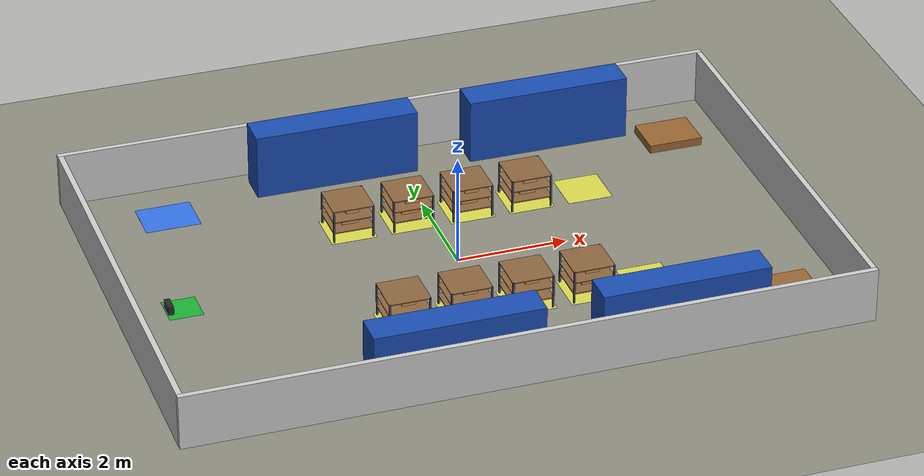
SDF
<?xml version="1.0"?>
<!-- SINH TU DONG boi agv_gazebo/scripts/make_warehouse.py tu agv_mission/config/shelves.yaml.
     Khong sua tay: sua yaml roi chay lai script. -->
<sdf version="1.9">
  <world name="warehouse">
    <physics name="3ms" type="ignored">
      <max_step_size>0.003</max_step_size>
      <real_time_factor>1.0</real_time_factor>
    </physics>
    <plugin filename="gz-sim-physics-system" name="gz::sim::systems::Physics"/>
    <plugin filename="gz-sim-user-commands-system" name="gz::sim::systems::UserCommands"/>
    <plugin filename="gz-sim-scene-broadcaster-system" name="gz::sim::systems::SceneBroadcaster"/>
    <plugin filename="gz-sim-sensors-system" name="gz::sim::systems::Sensors">
      <render_engine>ogre2</render_engine>
    </plugin>
    <plugin filename="gz-sim-imu-system" name="gz::sim::systems::Imu"/>
    <!-- Cam bien tiep xuc mat nang cua xe ("co ke") -->
    <plugin filename="gz-sim-contact-system" name="gz::sim::systems::Contact"/>
    <scene><ambient>0.6 0.6 0.6 1</ambient><background>0.7 0.7 0.7 1</background><grid>false</grid></scene>
    <light type="directional" name="sun"><cast_shadows>true</cast_shadows><pose>0 0 10 0 0 0</pose><diffuse>0.9 0.9 0.9 1</diffuse><specular>0.2 0.2 0.2 1</specular><direction>-0.3 0.2 -0.9</direction></light>
    <model name="floor"><static>true</static><link name="link"><collision name="c"><geometry><plane><normal>0 0 1</normal><size>30 30</size></plane></geometry></collision><visual name="v"><geometry><plane><normal>0 0 1</normal><size>30 30</size></plane></geometry><material><ambient>0.55 0.55 0.5 1</ambient><diffuse>0.55 0.55 0.5 1</diffuse></material></visual></link></model>
    <!-- Tuong cao 1 m -->
    <model name="wall_north"><static>true</static><pose>0 4.05 0.5 0 0 0.0</pose>
      <link name="link"><collision name="wall_north_c"><pose>0 0 0 0 0 0</pose><geometry><box><size>12.2 0.1 1.0</size></box></geometry></collision><visual name="wall_north_v"><pose>0 0 0 0 0 0</pose><geometry><box><size>12.2 0.1 1.0</size></box></geometry><material><ambient>0.8 0.8 0.8 1</ambient><diffuse>0.8 0.8 0.8 1</diffuse></material></visual></link>
    </model>
    <model name="wall_south"><static>true</static><pose>0 -4.05 0.5 0 0 0.0</pose>
      <link name="link"><collision name="wall_south_c"><pose>0 0 0 0 0 0</pose><geometry><box><size>12.2 0.1 1.0</size></box></geometry></collision><visual name="wall_south_v"><pose>0 0 0 0 0 0</pose><geometry><box><size>12.2 0.1 1.0</size></box></geometry><material><ambient>0.8 0.8 0.8 1</ambient><diffuse>0.8 0.8 0.8 1</diffuse></material></visual></link>
    </model>
    <model name="wall_east"><static>true</static><pose>6.05 0 0.5 0 0 0.0</pose>
      <link name="link"><collision name="wall_east_c"><pose>0 0 0 0 0 0</pose><geometry><box><size>0.1 8.0 1.0</size></box></geometry></collision><visual name="wall_east_v"><pose>0 0 0 0 0 0</pose><geometry><box><size>0.1 8.0 1.0</size></box></geometry><material><ambient>0.8 0.8 0.8 1</ambient><diffuse>0.8 0.8 0.8 1</diffuse></material></visual></link>
    </model>
    <model name="wall_west"><static>true</static><pose>-6.05 0 0.5 0 0 0.0</pose>
      <link name="link"><collision name="wall_west_c"><pose>0 0 0 0 0 0</pose><geometry><box><size>0.1 8.0 1.0</size></box></geometry></collision><visual name="wall_west_v"><pose>0 0 0 0 0 0</pose><geometry><box><size>0.1 8.0 1.0</size></box></geometry><material><ambient>0.8 0.8 0.8 1</ambient><diffuse>0.8 0.8 0.8 1</diffuse></material></visual></link>
    </model>
    <!-- Ke co dinh sat tuong (toi san, lidar thay) -->
    <model name="rack_1"><static>true</static><pose>-1.2 3.45 0.6 0 0 0.0</pose>
      <link name="link"><collision name="rack_1_c"><pose>0 0 0 0 0 0</pose><geometry><box><size>3.0 0.6 1.2</size></box></geometry></collision><visual name="rack_1_v"><pose>0 0 0 0 0 0</pose><geometry><box><size>3.0 0.6 1.2</size></box></geometry><material><ambient>0.1 0.3 0.7 1</ambient><diffuse>0.1 0.3 0.7 1</diffuse></material></visual></link>
    </model>
    <model name="rack_2"><static>true</static><pose>2.8 3.45 0.6 0 0 0.0</pose>
      <link name="link"><collision name="rack_2_c"><pose>0 0 0 0 0 0</pose><geometry><box><size>3.0 0.6 1.2</size></box></geometry></collision><visual name="rack_2_v"><pose>0 0 0 0 0 0</pose><geometry><box><size>3.0 0.6 1.2</size></box></geometry><material><ambient>0.1 0.3 0.7 1</ambient><diffuse>0.1 0.3 0.7 1</diffuse></material></visual></link>
    </model>
    <model name="rack_3"><static>true</static><pose>-1.2 -3.45 0.6 0 0 0.0</pose>
      <link name="link"><collision name="rack_3_c"><pose>0 0 0 0 0 0</pose><geometry><box><size>3.0 0.6 1.2</size></box></geometry></collision><visual name="rack_3_v"><pose>0 0 0 0 0 0</pose><geometry><box><size>3.0 0.6 1.2</size></box></geometry><material><ambient>0.1 0.3 0.7 1</ambient><diffuse>0.1 0.3 0.7 1</diffuse></material></visual></link>
    </model>
    <model name="rack_4"><static>true</static><pose>2.8 -3.45 0.6 0 0 0.0</pose>
      <link name="link"><collision name="rack_4_c"><pose>0 0 0 0 0 0</pose><geometry><box><size>3.0 0.6 1.2</size></box></geometry></collision><visual name="rack_4_v"><pose>0 0 0 0 0 0</pose><geometry><box><size>3.0 0.6 1.2</size></box></geometry><material><ambient>0.1 0.3 0.7 1</ambient><diffuse>0.1 0.3 0.7 1</diffuse></material></visual></link>
    </model>
    <!-- Pallet 0.15 m: lidar o 0.12 m thay duoc, khong can vung cam -->
    <model name="pallet_1"><static>true</static><pose>5.0 2.8 0.075 0 0 0.0</pose>
      <link name="link"><collision name="pallet_1_c"><pose>0 0 0 0 0 0</pose><geometry><box><size>1.0 0.8 0.15</size></box></geometry></collision><visual name="pallet_1_v"><pose>0 0 0 0 0 0</pose><geometry><box><size>1.0 0.8 0.15</size></box></geometry><material><ambient>0.6 0.4 0.2 1</ambient><diffuse>0.6 0.4 0.2 1</diffuse></material></visual></link>
    </model>
    <model name="pallet_2"><static>true</static><pose>5.0 -2.8 0.075 0 0 0.0</pose>
      <link name="link"><collision name="pallet_2_c"><pose>0 0 0 0 0 0</pose><geometry><box><size>1.0 0.8 0.15</size></box></geometry></collision><visual name="pallet_2_v"><pose>0 0 0 0 0 0</pose><geometry><box><size>1.0 0.8 0.15</size></box></geometry><material><ambient>0.6 0.4 0.2 1</ambient><diffuse>0.6 0.4 0.2 1</diffuse></material></visual></link>
    </model>
    <!-- Vach son san (khong collision): tram va o ke -->
    <model name="mark_tram_sac"><static>true</static><pose>-4.95 0.0 0.001 0 0 0.0</pose>
      <link name="link"><visual name="mark_tram_sac_v"><pose>0 0 0 0 0 0</pose><geometry><box><size>0.6 0.6 0.002</size></box></geometry><material><ambient>0.1 0.7 0.2 1</ambient><diffuse>0.1 0.7 0.2 1</diffuse></material></visual></link>
    </model>
    <model name="mark_tram_lay_hang"><static>true</static><pose>-4.4 -3.0 0.001 0 0 0.0</pose>
      <link name="link"><visual name="mark_tram_lay_hang_v"><pose>0 0 0 0 0 0</pose><geometry><box><size>1.0 0.8 0.002</size></box></geometry><material><ambient>0.95 0.55 0.0 1</ambient><diffuse>0.95 0.55 0.0 1</diffuse></material></visual></link>
    </model>
    <model name="mark_khu_nhap_hang"><static>true</static><pose>-4.4 3.0 0.001 0 0 0.0</pose>
      <link name="link"><visual name="mark_khu_nhap_hang_v"><pose>0 0 0 0 0 0</pose><geometry><box><size>1.0 0.8 0.002</size></box></geometry><material><ambient>0.2 0.45 0.9 1</ambient><diffuse>0.2 0.45 0.9 1</diffuse></material></visual></link>
    </model>
    <model name="charger_tram_sac"><static>true</static><pose>-5.179999999999191 6.103256524711279e-07 0.075 0 0 3.14159</pose>
      <link name="link"><collision name="charger_tram_sac_c"><pose>0 0 0 0 0 0</pose><geometry><box><size>0.1 0.3 0.15</size></box></geometry></collision><visual name="charger_tram_sac_v"><pose>0 0 0 0 0 0</pose><geometry><box><size>0.1 0.3 0.15</size></box></geometry><material><ambient>0.15 0.15 0.15 1</ambient><diffuse>0.15 0.15 0.15 1</diffuse></material></visual></link>
    </model>
    <model name="slot_N1"><static>true</static><pose>-1.5 1.6 0.0005 0 0 0.0</pose>
      <link name="link"><visual name="slot_N1_v"><pose>0 0 0 0 0 0</pose><geometry><box><size>0.83 0.83 0.001</size></box></geometry><material><ambient>0.85 0.85 0.3 1</ambient><diffuse>0.85 0.85 0.3 1</diffuse></material></visual></link>
    </model>
    <model name="slot_N2"><static>true</static><pose>-0.40000000000000036 1.6 0.0005 0 0 0.0</pose>
      <link name="link"><visual name="slot_N2_v"><pose>0 0 0 0 0 0</pose><geometry><box><size>0.83 0.83 0.001</size></box></geometry><material><ambient>0.85 0.85 0.3 1</ambient><diffuse>0.85 0.85 0.3 1</diffuse></material></visual></link>
    </model>
    <model name="slot_N3"><static>true</static><pose>0.7000000000000002 1.6 0.0005 0 0 0.0</pose>
      <link name="link"><visual name="slot_N3_v"><pose>0 0 0 0 0 0</pose><geometry><box><size>0.83 0.83 0.001</size></box></geometry><material><ambient>0.85 0.85 0.3 1</ambient><diffuse>0.85 0.85 0.3 1</diffuse></material></visual></link>
    </model>
    <model name="slot_N4"><static>true</static><pose>1.7999999999999998 1.6 0.0005 0 0 0.0</pose>
      <link name="link"><visual name="slot_N4_v"><pose>0 0 0 0 0 0</pose><geometry><box><size>0.83 0.83 0.001</size></box></geometry><material><ambient>0.85 0.85 0.3 1</ambient><diffuse>0.85 0.85 0.3 1</diffuse></material></visual></link>
    </model>
    <model name="slot_N5"><static>true</static><pose>2.9000000000000004 1.6 0.0005 0 0 0.0</pose>
      <link name="link"><visual name="slot_N5_v"><pose>0 0 0 0 0 0</pose><geometry><box><size>0.83 0.83 0.001</size></box></geometry><material><ambient>0.85 0.85 0.3 1</ambient><diffuse>0.85 0.85 0.3 1</diffuse></material></visual></link>
    </model>
    <model name="slot_S1"><static>true</static><pose>-1.5 -1.6 0.0005 0 0 0.0</pose>
      <link name="link"><visual name="slot_S1_v"><pose>0 0 0 0 0 0</pose><geometry><box><size>0.83 0.83 0.001</size></box></geometry><material><ambient>0.85 0.85 0.3 1</ambient><diffuse>0.85 0.85 0.3 1</diffuse></material></visual></link>
    </model>
    <model name="slot_S2"><static>true</static><pose>-0.40000000000000036 -1.6 0.0005 0 0 0.0</pose>
      <link name="link"><visual name="slot_S2_v"><pose>0 0 0 0 0 0</pose><geometry><box><size>0.83 0.83 0.001</size></box></geometry><material><ambient>0.85 0.85 0.3 1</ambient><diffuse>0.85 0.85 0.3 1</diffuse></material></visual></link>
    </model>
    <model name="slot_S3"><static>true</static><pose>0.7000000000000002 -1.6 0.0005 0 0 0.0</pose>
      <link name="link"><visual name="slot_S3_v"><pose>0 0 0 0 0 0</pose><geometry><box><size>0.83 0.83 0.001</size></box></geometry><material><ambient>0.85 0.85 0.3 1</ambient><diffuse>0.85 0.85 0.3 1</diffuse></material></visual></link>
    </model>
    <model name="slot_S4"><static>true</static><pose>1.7999999999999998 -1.6 0.0005 0 0 0.0</pose>
      <link name="link"><visual name="slot_S4_v"><pose>0 0 0 0 0 0</pose><geometry><box><size>0.83 0.83 0.001</size></box></geometry><material><ambient>0.85 0.85 0.3 1</ambient><diffuse>0.85 0.85 0.3 1</diffuse></material></visual></link>
    </model>
    <model name="slot_S5"><static>true</static><pose>2.9000000000000004 -1.6 0.0005 0 0 0.0</pose>
      <link name="link"><visual name="slot_S5_v"><pose>0 0 0 0 0 0</pose><geometry><box><size>0.83 0.83 0.001</size></box></geometry><material><ambient>0.85 0.85 0.3 1</ambient><diffuse>0.85 0.85 0.3 1</diffuse></material></visual></link>
    </model>
    <!-- Ke mini 0.75 m, gam 0.18 m, 3.0 kg (ke + hang) -->
    <model name="ke_01"><pose>-1.5 1.6 0 0 0 0</pose>
      <link name="link">
        <inertial><pose>0 0 0.32999999999999996 0 0 0</pose><mass>3.0</mass><inertia><ixx>0.2367</ixx><iyy>0.2367</iyy><izz>0.2812</izz><ixy>0</ixy><ixz>0</ixz><iyz>0</iyz></inertia></inertial>
        <collision name="leg0_c"><pose>0.36 0.36 0.09 0 0 0</pose><geometry><box><size>0.03 0.03 0.18</size></box></geometry></collision><visual name="leg0_v"><pose>0.36 0.36 0.09 0 0 0</pose><geometry><box><size>0.03 0.03 0.18</size></box></geometry><material><ambient>0.3 0.3 0.35 1</ambient><diffuse>0.3 0.3 0.35 1</diffuse></material></visual><collision name="post0_c"><pose>0.36 0.36 0.41 0 0 0</pose><geometry><box><size>0.03 0.03 0.42</size></box></geometry></collision><visual name="post0_v"><pose>0.36 0.36 0.41 0 0 0</pose><geometry><box><size>0.03 0.03 0.42</size></box></geometry><material><ambient>0.3 0.3 0.35 1</ambient><diffuse>0.3 0.3 0.35 1</diffuse></material></visual><collision name="leg1_c"><pose>0.36 -0.36 0.09 0 0 0</pose><geometry><box><size>0.03 0.03 0.18</size></box></geometry></collision><visual name="leg1_v"><pose>0.36 -0.36 0.09 0 0 0</pose><geometry><box><size>0.03 0.03 0.18</size></box></geometry><material><ambient>0.3 0.3 0.35 1</ambient><diffuse>0.3 0.3 0.35 1</diffuse></material></visual><collision name="post1_c"><pose>0.36 -0.36 0.41 0 0 0</pose><geometry><box><size>0.03 0.03 0.42</size></box></geometry></collision><visual name="post1_v"><pose>0.36 -0.36 0.41 0 0 0</pose><geometry><box><size>0.03 0.03 0.42</size></box></geometry><material><ambient>0.3 0.3 0.35 1</ambient><diffuse>0.3 0.3 0.35 1</diffuse></material></visual><collision name="leg2_c"><pose>-0.36 0.36 0.09 0 0 0</pose><geometry><box><size>0.03 0.03 0.18</size></box></geometry></collision><visual name="leg2_v"><pose>-0.36 0.36 0.09 0 0 0</pose><geometry><box><size>0.03 0.03 0.18</size></box></geometry><material><ambient>0.3 0.3 0.35 1</ambient><diffuse>0.3 0.3 0.35 1</diffuse></material></visual><collision name="post2_c"><pose>-0.36 0.36 0.41 0 0 0</pose><geometry><box><size>0.03 0.03 0.42</size></box></geometry></collision><visual name="post2_v"><pose>-0.36 0.36 0.41 0 0 0</pose><geometry><box><size>0.03 0.03 0.42</size></box></geometry><material><ambient>0.3 0.3 0.35 1</ambient><diffuse>0.3 0.3 0.35 1</diffuse></material></visual><collision name="leg3_c"><pose>-0.36 -0.36 0.09 0 0 0</pose><geometry><box><size>0.03 0.03 0.18</size></box></geometry></collision><visual name="leg3_v"><pose>-0.36 -0.36 0.09 0 0 0</pose><geometry><box><size>0.03 0.03 0.18</size></box></geometry><material><ambient>0.3 0.3 0.35 1</ambient><diffuse>0.3 0.3 0.35 1</diffuse></material></visual><collision name="post3_c"><pose>-0.36 -0.36 0.41 0 0 0</pose><geometry><box><size>0.03 0.03 0.42</size></box></geometry></collision><visual name="post3_v"><pose>-0.36 -0.36 0.41 0 0 0</pose><geometry><box><size>0.03 0.03 0.42</size></box></geometry><material><ambient>0.3 0.3 0.35 1</ambient><diffuse>0.3 0.3 0.35 1</diffuse></material></visual><collision name="deck_bottom_c"><pose>0 0 0.19 0 0 0</pose><geometry><box><size>0.75 0.75 0.02</size></box></geometry></collision><visual name="deck_bottom_v"><pose>0 0 0.19 0 0 0</pose><geometry><box><size>0.75 0.75 0.02</size></box></geometry><material><ambient>0.55 0.4 0.25 1</ambient><diffuse>0.55 0.4 0.25 1</diffuse></material></visual><collision name="deck_mid_c"><pose>0 0 0.4 0 0 0</pose><geometry><box><size>0.75 0.75 0.015</size></box></geometry></collision><visual name="deck_mid_v"><pose>0 0 0.4 0 0 0</pose><geometry><box><size>0.75 0.75 0.015</size></box></geometry><material><ambient>0.55 0.4 0.25 1</ambient><diffuse>0.55 0.4 0.25 1</diffuse></material></visual><collision name="deck_top_c"><pose>0 0 0.6125 0 0 0</pose><geometry><box><size>0.75 0.75 0.015</size></box></geometry></collision><visual name="deck_top_v"><pose>0 0 0.6125 0 0 0</pose><geometry><box><size>0.75 0.75 0.015</size></box></geometry><material><ambient>0.55 0.4 0.25 1</ambient><diffuse>0.55 0.4 0.25 1</diffuse></material></visual><collision name="goods1_c"><pose>0 0 0.27499999999999997 0 0 0</pose><geometry><box><size>0.3 0.3 0.15</size></box></geometry></collision><visual name="goods1_v"><pose>0 0 0.27499999999999997 0 0 0</pose><geometry><box><size>0.3 0.3 0.15</size></box></geometry><material><ambient>0.8 0.6 0.3 1</ambient><diffuse>0.8 0.6 0.3 1</diffuse></material></visual><collision name="goods2_c"><pose>0.05 -0.05 0.4675 0 0 0</pose><geometry><box><size>0.25 0.2 0.12</size></box></geometry></collision><visual name="goods2_v"><pose>0.05 -0.05 0.4675 0 0 0</pose><geometry><box><size>0.25 0.2 0.12</size></box></geometry><material><ambient>0.8 0.6 0.3 1</ambient><diffuse>0.8 0.6 0.3 1</diffuse></material></visual>
      </link>
    </model>
    <model name="ke_02"><pose>-0.40000000000000036 1.6 0 0 0 0</pose>
      <link name="link">
        <inertial><pose>0 0 0.32999999999999996 0 0 0</pose><mass>3.0</mass><inertia><ixx>0.2367</ixx><iyy>0.2367</iyy><izz>0.2812</izz><ixy>0</ixy><ixz>0</ixz><iyz>0</iyz></inertia></inertial>
        <collision name="leg0_c"><pose>0.36 0.36 0.09 0 0 0</pose><geometry><box><size>0.03 0.03 0.18</size></box></geometry></collision><visual name="leg0_v"><pose>0.36 0.36 0.09 0 0 0</pose><geometry><box><size>0.03 0.03 0.18</size></box></geometry><material><ambient>0.3 0.3 0.35 1</ambient><diffuse>0.3 0.3 0.35 1</diffuse></material></visual><collision name="post0_c"><pose>0.36 0.36 0.41 0 0 0</pose><geometry><box><size>0.03 0.03 0.42</size></box></geometry></collision><visual name="post0_v"><pose>0.36 0.36 0.41 0 0 0</pose><geometry><box><size>0.03 0.03 0.42</size></box></geometry><material><ambient>0.3 0.3 0.35 1</ambient><diffuse>0.3 0.3 0.35 1</diffuse></material></visual><collision name="leg1_c"><pose>0.36 -0.36 0.09 0 0 0</pose><geometry><box><size>0.03 0.03 0.18</size></box></geometry></collision><visual name="leg1_v"><pose>0.36 -0.36 0.09 0 0 0</pose><geometry><box><size>0.03 0.03 0.18</size></box></geometry><material><ambient>0.3 0.3 0.35 1</ambient><diffuse>0.3 0.3 0.35 1</diffuse></material></visual><collision name="post1_c"><pose>0.36 -0.36 0.41 0 0 0</pose><geometry><box><size>0.03 0.03 0.42</size></box></geometry></collision><visual name="post1_v"><pose>0.36 -0.36 0.41 0 0 0</pose><geometry><box><size>0.03 0.03 0.42</size></box></geometry><material><ambient>0.3 0.3 0.35 1</ambient><diffuse>0.3 0.3 0.35 1</diffuse></material></visual><collision name="leg2_c"><pose>-0.36 0.36 0.09 0 0 0</pose><geometry><box><size>0.03 0.03 0.18</size></box></geometry></collision><visual name="leg2_v"><pose>-0.36 0.36 0.09 0 0 0</pose><geometry><box><size>0.03 0.03 0.18</size></box></geometry><material><ambient>0.3 0.3 0.35 1</ambient><diffuse>0.3 0.3 0.35 1</diffuse></material></visual><collision name="post2_c"><pose>-0.36 0.36 0.41 0 0 0</pose><geometry><box><size>0.03 0.03 0.42</size></box></geometry></collision><visual name="post2_v"><pose>-0.36 0.36 0.41 0 0 0</pose><geometry><box><size>0.03 0.03 0.42</size></box></geometry><material><ambient>0.3 0.3 0.35 1</ambient><diffuse>0.3 0.3 0.35 1</diffuse></material></visual><collision name="leg3_c"><pose>-0.36 -0.36 0.09 0 0 0</pose><geometry><box><size>0.03 0.03 0.18</size></box></geometry></collision><visual name="leg3_v"><pose>-0.36 -0.36 0.09 0 0 0</pose><geometry><box><size>0.03 0.03 0.18</size></box></geometry><material><ambient>0.3 0.3 0.35 1</ambient><diffuse>0.3 0.3 0.35 1</diffuse></material></visual><collision name="post3_c"><pose>-0.36 -0.36 0.41 0 0 0</pose><geometry><box><size>0.03 0.03 0.42</size></box></geometry></collision><visual name="post3_v"><pose>-0.36 -0.36 0.41 0 0 0</pose><geometry><box><size>0.03 0.03 0.42</size></box></geometry><material><ambient>0.3 0.3 0.35 1</ambient><diffuse>0.3 0.3 0.35 1</diffuse></material></visual><collision name="deck_bottom_c"><pose>0 0 0.19 0 0 0</pose><geometry><box><size>0.75 0.75 0.02</size></box></geometry></collision><visual name="deck_bottom_v"><pose>0 0 0.19 0 0 0</pose><geometry><box><size>0.75 0.75 0.02</size></box></geometry><material><ambient>0.55 0.4 0.25 1</ambient><diffuse>0.55 0.4 0.25 1</diffuse></material></visual><collision name="deck_mid_c"><pose>0 0 0.4 0 0 0</pose><geometry><box><size>0.75 0.75 0.015</size></box></geometry></collision><visual name="deck_mid_v"><pose>0 0 0.4 0 0 0</pose><geometry><box><size>0.75 0.75 0.015</size></box></geometry><material><ambient>0.55 0.4 0.25 1</ambient><diffuse>0.55 0.4 0.25 1</diffuse></material></visual><collision name="deck_top_c"><pose>0 0 0.6125 0 0 0</pose><geometry><box><size>0.75 0.75 0.015</size></box></geometry></collision><visual name="deck_top_v"><pose>0 0 0.6125 0 0 0</pose><geometry><box><size>0.75 0.75 0.015</size></box></geometry><material><ambient>0.55 0.4 0.25 1</ambient><diffuse>0.55 0.4 0.25 1</diffuse></material></visual><collision name="goods1_c"><pose>0 0 0.27499999999999997 0 0 0</pose><geometry><box><size>0.3 0.3 0.15</size></box></geometry></collision><visual name="goods1_v"><pose>0 0 0.27499999999999997 0 0 0</pose><geometry><box><size>0.3 0.3 0.15</size></box></geometry><material><ambient>0.8 0.6 0.3 1</ambient><diffuse>0.8 0.6 0.3 1</diffuse></material></visual><collision name="goods2_c"><pose>0.05 -0.05 0.4675 0 0 0</pose><geometry><box><size>0.25 0.2 0.12</size></box></geometry></collision><visual name="goods2_v"><pose>0.05 -0.05 0.4675 0 0 0</pose><geometry><box><size>0.25 0.2 0.12</size></box></geometry><material><ambient>0.8 0.6 0.3 1</ambient><diffuse>0.8 0.6 0.3 1</diffuse></material></visual>
      </link>
    </model>
    <model name="ke_03"><pose>0.7000000000000002 1.6 0 0 0 0</pose>
      <link name="link">
        <inertial><pose>0 0 0.32999999999999996 0 0 0</pose><mass>3.0</mass><inertia><ixx>0.2367</ixx><iyy>0.2367</iyy><izz>0.2812</izz><ixy>0</ixy><ixz>0</ixz><iyz>0</iyz></inertia></inertial>
        <collision name="leg0_c"><pose>0.36 0.36 0.09 0 0 0</pose><geometry><box><size>0.03 0.03 0.18</size></box></geometry></collision><visual name="leg0_v"><pose>0.36 0.36 0.09 0 0 0</pose><geometry><box><size>0.03 0.03 0.18</size></box></geometry><material><ambient>0.3 0.3 0.35 1</ambient><diffuse>0.3 0.3 0.35 1</diffuse></material></visual><collision name="post0_c"><pose>0.36 0.36 0.41 0 0 0</pose><geometry><box><size>0.03 0.03 0.42</size></box></geometry></collision><visual name="post0_v"><pose>0.36 0.36 0.41 0 0 0</pose><geometry><box><size>0.03 0.03 0.42</size></box></geometry><material><ambient>0.3 0.3 0.35 1</ambient><diffuse>0.3 0.3 0.35 1</diffuse></material></visual><collision name="leg1_c"><pose>0.36 -0.36 0.09 0 0 0</pose><geometry><box><size>0.03 0.03 0.18</size></box></geometry></collision><visual name="leg1_v"><pose>0.36 -0.36 0.09 0 0 0</pose><geometry><box><size>0.03 0.03 0.18</size></box></geometry><material><ambient>0.3 0.3 0.35 1</ambient><diffuse>0.3 0.3 0.35 1</diffuse></material></visual><collision name="post1_c"><pose>0.36 -0.36 0.41 0 0 0</pose><geometry><box><size>0.03 0.03 0.42</size></box></geometry></collision><visual name="post1_v"><pose>0.36 -0.36 0.41 0 0 0</pose><geometry><box><size>0.03 0.03 0.42</size></box></geometry><material><ambient>0.3 0.3 0.35 1</ambient><diffuse>0.3 0.3 0.35 1</diffuse></material></visual><collision name="leg2_c"><pose>-0.36 0.36 0.09 0 0 0</pose><geometry><box><size>0.03 0.03 0.18</size></box></geometry></collision><visual name="leg2_v"><pose>-0.36 0.36 0.09 0 0 0</pose><geometry><box><size>0.03 0.03 0.18</size></box></geometry><material><ambient>0.3 0.3 0.35 1</ambient><diffuse>0.3 0.3 0.35 1</diffuse></material></visual><collision name="post2_c"><pose>-0.36 0.36 0.41 0 0 0</pose><geometry><box><size>0.03 0.03 0.42</size></box></geometry></collision><visual name="post2_v"><pose>-0.36 0.36 0.41 0 0 0</pose><geometry><box><size>0.03 0.03 0.42</size></box></geometry><material><ambient>0.3 0.3 0.35 1</ambient><diffuse>0.3 0.3 0.35 1</diffuse></material></visual><collision name="leg3_c"><pose>-0.36 -0.36 0.09 0 0 0</pose><geometry><box><size>0.03 0.03 0.18</size></box></geometry></collision><visual name="leg3_v"><pose>-0.36 -0.36 0.09 0 0 0</pose><geometry><box><size>0.03 0.03 0.18</size></box></geometry><material><ambient>0.3 0.3 0.35 1</ambient><diffuse>0.3 0.3 0.35 1</diffuse></material></visual><collision name="post3_c"><pose>-0.36 -0.36 0.41 0 0 0</pose><geometry><box><size>0.03 0.03 0.42</size></box></geometry></collision><visual name="post3_v"><pose>-0.36 -0.36 0.41 0 0 0</pose><geometry><box><size>0.03 0.03 0.42</size></box></geometry><material><ambient>0.3 0.3 0.35 1</ambient><diffuse>0.3 0.3 0.35 1</diffuse></material></visual><collision name="deck_bottom_c"><pose>0 0 0.19 0 0 0</pose><geometry><box><size>0.75 0.75 0.02</size></box></geometry></collision><visual name="deck_bottom_v"><pose>0 0 0.19 0 0 0</pose><geometry><box><size>0.75 0.75 0.02</size></box></geometry><material><ambient>0.55 0.4 0.25 1</ambient><diffuse>0.55 0.4 0.25 1</diffuse></material></visual><collision name="deck_mid_c"><pose>0 0 0.4 0 0 0</pose><geometry><box><size>0.75 0.75 0.015</size></box></geometry></collision><visual name="deck_mid_v"><pose>0 0 0.4 0 0 0</pose><geometry><box><size>0.75 0.75 0.015</size></box></geometry><material><ambient>0.55 0.4 0.25 1</ambient><diffuse>0.55 0.4 0.25 1</diffuse></material></visual><collision name="deck_top_c"><pose>0 0 0.6125 0 0 0</pose><geometry><box><size>0.75 0.75 0.015</size></box></geometry></collision><visual name="deck_top_v"><pose>0 0 0.6125 0 0 0</pose><geometry><box><size>0.75 0.75 0.015</size></box></geometry><material><ambient>0.55 0.4 0.25 1</ambient><diffuse>0.55 0.4 0.25 1</diffuse></material></visual><collision name="goods1_c"><pose>0 0 0.27499999999999997 0 0 0</pose><geometry><box><size>0.3 0.3 0.15</size></box></geometry></collision><visual name="goods1_v"><pose>0 0 0.27499999999999997 0 0 0</pose><geometry><box><size>0.3 0.3 0.15</size></box></geometry><material><ambient>0.8 0.6 0.3 1</ambient><diffuse>0.8 0.6 0.3 1</diffuse></material></visual><collision name="goods2_c"><pose>0.05 -0.05 0.4675 0 0 0</pose><geometry><box><size>0.25 0.2 0.12</size></box></geometry></collision><visual name="goods2_v"><pose>0.05 -0.05 0.4675 0 0 0</pose><geometry><box><size>0.25 0.2 0.12</size></box></geometry><material><ambient>0.8 0.6 0.3 1</ambient><diffuse>0.8 0.6 0.3 1</diffuse></material></visual>
      </link>
    </model>
    <model name="ke_04"><pose>1.7999999999999998 1.6 0 0 0 0</pose>
      <link name="link">
        <inertial><pose>0 0 0.32999999999999996 0 0 0</pose><mass>3.0</mass><inertia><ixx>0.2367</ixx><iyy>0.2367</iyy><izz>0.2812</izz><ixy>0</ixy><ixz>0</ixz><iyz>0</iyz></inertia></inertial>
        <collision name="leg0_c"><pose>0.36 0.36 0.09 0 0 0</pose><geometry><box><size>0.03 0.03 0.18</size></box></geometry></collision><visual name="leg0_v"><pose>0.36 0.36 0.09 0 0 0</pose><geometry><box><size>0.03 0.03 0.18</size></box></geometry><material><ambient>0.3 0.3 0.35 1</ambient><diffuse>0.3 0.3 0.35 1</diffuse></material></visual><collision name="post0_c"><pose>0.36 0.36 0.41 0 0 0</pose><geometry><box><size>0.03 0.03 0.42</size></box></geometry></collision><visual name="post0_v"><pose>0.36 0.36 0.41 0 0 0</pose><geometry><box><size>0.03 0.03 0.42</size></box></geometry><material><ambient>0.3 0.3 0.35 1</ambient><diffuse>0.3 0.3 0.35 1</diffuse></material></visual><collision name="leg1_c"><pose>0.36 -0.36 0.09 0 0 0</pose><geometry><box><size>0.03 0.03 0.18</size></box></geometry></collision><visual name="leg1_v"><pose>0.36 -0.36 0.09 0 0 0</pose><geometry><box><size>0.03 0.03 0.18</size></box></geometry><material><ambient>0.3 0.3 0.35 1</ambient><diffuse>0.3 0.3 0.35 1</diffuse></material></visual><collision name="post1_c"><pose>0.36 -0.36 0.41 0 0 0</pose><geometry><box><size>0.03 0.03 0.42</size></box></geometry></collision><visual name="post1_v"><pose>0.36 -0.36 0.41 0 0 0</pose><geometry><box><size>0.03 0.03 0.42</size></box></geometry><material><ambient>0.3 0.3 0.35 1</ambient><diffuse>0.3 0.3 0.35 1</diffuse></material></visual><collision name="leg2_c"><pose>-0.36 0.36 0.09 0 0 0</pose><geometry><box><size>0.03 0.03 0.18</size></box></geometry></collision><visual name="leg2_v"><pose>-0.36 0.36 0.09 0 0 0</pose><geometry><box><size>0.03 0.03 0.18</size></box></geometry><material><ambient>0.3 0.3 0.35 1</ambient><diffuse>0.3 0.3 0.35 1</diffuse></material></visual><collision name="post2_c"><pose>-0.36 0.36 0.41 0 0 0</pose><geometry><box><size>0.03 0.03 0.42</size></box></geometry></collision><visual name="post2_v"><pose>-0.36 0.36 0.41 0 0 0</pose><geometry><box><size>0.03 0.03 0.42</size></box></geometry><material><ambient>0.3 0.3 0.35 1</ambient><diffuse>0.3 0.3 0.35 1</diffuse></material></visual><collision name="leg3_c"><pose>-0.36 -0.36 0.09 0 0 0</pose><geometry><box><size>0.03 0.03 0.18</size></box></geometry></collision><visual name="leg3_v"><pose>-0.36 -0.36 0.09 0 0 0</pose><geometry><box><size>0.03 0.03 0.18</size></box></geometry><material><ambient>0.3 0.3 0.35 1</ambient><diffuse>0.3 0.3 0.35 1</diffuse></material></visual><collision name="post3_c"><pose>-0.36 -0.36 0.41 0 0 0</pose><geometry><box><size>0.03 0.03 0.42</size></box></geometry></collision><visual name="post3_v"><pose>-0.36 -0.36 0.41 0 0 0</pose><geometry><box><size>0.03 0.03 0.42</size></box></geometry><material><ambient>0.3 0.3 0.35 1</ambient><diffuse>0.3 0.3 0.35 1</diffuse></material></visual><collision name="deck_bottom_c"><pose>0 0 0.19 0 0 0</pose><geometry><box><size>0.75 0.75 0.02</size></box></geometry></collision><visual name="deck_bottom_v"><pose>0 0 0.19 0 0 0</pose><geometry><box><size>0.75 0.75 0.02</size></box></geometry><material><ambient>0.55 0.4 0.25 1</ambient><diffuse>0.55 0.4 0.25 1</diffuse></material></visual><collision name="deck_mid_c"><pose>0 0 0.4 0 0 0</pose><geometry><box><size>0.75 0.75 0.015</size></box></geometry></collision><visual name="deck_mid_v"><pose>0 0 0.4 0 0 0</pose><geometry><box><size>0.75 0.75 0.015</size></box></geometry><material><ambient>0.55 0.4 0.25 1</ambient><diffuse>0.55 0.4 0.25 1</diffuse></material></visual><collision name="deck_top_c"><pose>0 0 0.6125 0 0 0</pose><geometry><box><size>0.75 0.75 0.015</size></box></geometry></collision><visual name="deck_top_v"><pose>0 0 0.6125 0 0 0</pose><geometry><box><size>0.75 0.75 0.015</size></box></geometry><material><ambient>0.55 0.4 0.25 1</ambient><diffuse>0.55 0.4 0.25 1</diffuse></material></visual><collision name="goods1_c"><pose>0 0 0.27499999999999997 0 0 0</pose><geometry><box><size>0.3 0.3 0.15</size></box></geometry></collision><visual name="goods1_v"><pose>0 0 0.27499999999999997 0 0 0</pose><geometry><box><size>0.3 0.3 0.15</size></box></geometry><material><ambient>0.8 0.6 0.3 1</ambient><diffuse>0.8 0.6 0.3 1</diffuse></material></visual><collision name="goods2_c"><pose>0.05 -0.05 0.4675 0 0 0</pose><geometry><box><size>0.25 0.2 0.12</size></box></geometry></collision><visual name="goods2_v"><pose>0.05 -0.05 0.4675 0 0 0</pose><geometry><box><size>0.25 0.2 0.12</size></box></geometry><material><ambient>0.8 0.6 0.3 1</ambient><diffuse>0.8 0.6 0.3 1</diffuse></material></visual>
      </link>
    </model>
    <model name="ke_05"><pose>-1.5 -1.6 0 0 0 0</pose>
      <link name="link">
        <inertial><pose>0 0 0.32999999999999996 0 0 0</pose><mass>3.0</mass><inertia><ixx>0.2367</ixx><iyy>0.2367</iyy><izz>0.2812</izz><ixy>0</ixy><ixz>0</ixz><iyz>0</iyz></inertia></inertial>
        <collision name="leg0_c"><pose>0.36 0.36 0.09 0 0 0</pose><geometry><box><size>0.03 0.03 0.18</size></box></geometry></collision><visual name="leg0_v"><pose>0.36 0.36 0.09 0 0 0</pose><geometry><box><size>0.03 0.03 0.18</size></box></geometry><material><ambient>0.3 0.3 0.35 1</ambient><diffuse>0.3 0.3 0.35 1</diffuse></material></visual><collision name="post0_c"><pose>0.36 0.36 0.41 0 0 0</pose><geometry><box><size>0.03 0.03 0.42</size></box></geometry></collision><visual name="post0_v"><pose>0.36 0.36 0.41 0 0 0</pose><geometry><box><size>0.03 0.03 0.42</size></box></geometry><material><ambient>0.3 0.3 0.35 1</ambient><diffuse>0.3 0.3 0.35 1</diffuse></material></visual><collision name="leg1_c"><pose>0.36 -0.36 0.09 0 0 0</pose><geometry><box><size>0.03 0.03 0.18</size></box></geometry></collision><visual name="leg1_v"><pose>0.36 -0.36 0.09 0 0 0</pose><geometry><box><size>0.03 0.03 0.18</size></box></geometry><material><ambient>0.3 0.3 0.35 1</ambient><diffuse>0.3 0.3 0.35 1</diffuse></material></visual><collision name="post1_c"><pose>0.36 -0.36 0.41 0 0 0</pose><geometry><box><size>0.03 0.03 0.42</size></box></geometry></collision><visual name="post1_v"><pose>0.36 -0.36 0.41 0 0 0</pose><geometry><box><size>0.03 0.03 0.42</size></box></geometry><material><ambient>0.3 0.3 0.35 1</ambient><diffuse>0.3 0.3 0.35 1</diffuse></material></visual><collision name="leg2_c"><pose>-0.36 0.36 0.09 0 0 0</pose><geometry><box><size>0.03 0.03 0.18</size></box></geometry></collision><visual name="leg2_v"><pose>-0.36 0.36 0.09 0 0 0</pose><geometry><box><size>0.03 0.03 0.18</size></box></geometry><material><ambient>0.3 0.3 0.35 1</ambient><diffuse>0.3 0.3 0.35 1</diffuse></material></visual><collision name="post2_c"><pose>-0.36 0.36 0.41 0 0 0</pose><geometry><box><size>0.03 0.03 0.42</size></box></geometry></collision><visual name="post2_v"><pose>-0.36 0.36 0.41 0 0 0</pose><geometry><box><size>0.03 0.03 0.42</size></box></geometry><material><ambient>0.3 0.3 0.35 1</ambient><diffuse>0.3 0.3 0.35 1</diffuse></material></visual><collision name="leg3_c"><pose>-0.36 -0.36 0.09 0 0 0</pose><geometry><box><size>0.03 0.03 0.18</size></box></geometry></collision><visual name="leg3_v"><pose>-0.36 -0.36 0.09 0 0 0</pose><geometry><box><size>0.03 0.03 0.18</size></box></geometry><material><ambient>0.3 0.3 0.35 1</ambient><diffuse>0.3 0.3 0.35 1</diffuse></material></visual><collision name="post3_c"><pose>-0.36 -0.36 0.41 0 0 0</pose><geometry><box><size>0.03 0.03 0.42</size></box></geometry></collision><visual name="post3_v"><pose>-0.36 -0.36 0.41 0 0 0</pose><geometry><box><size>0.03 0.03 0.42</size></box></geometry><material><ambient>0.3 0.3 0.35 1</ambient><diffuse>0.3 0.3 0.35 1</diffuse></material></visual><collision name="deck_bottom_c"><pose>0 0 0.19 0 0 0</pose><geometry><box><size>0.75 0.75 0.02</size></box></geometry></collision><visual name="deck_bottom_v"><pose>0 0 0.19 0 0 0</pose><geometry><box><size>0.75 0.75 0.02</size></box></geometry><material><ambient>0.55 0.4 0.25 1</ambient><diffuse>0.55 0.4 0.25 1</diffuse></material></visual><collision name="deck_mid_c"><pose>0 0 0.4 0 0 0</pose><geometry><box><size>0.75 0.75 0.015</size></box></geometry></collision><visual name="deck_mid_v"><pose>0 0 0.4 0 0 0</pose><geometry><box><size>0.75 0.75 0.015</size></box></geometry><material><ambient>0.55 0.4 0.25 1</ambient><diffuse>0.55 0.4 0.25 1</diffuse></material></visual><collision name="deck_top_c"><pose>0 0 0.6125 0 0 0</pose><geometry><box><size>0.75 0.75 0.015</size></box></geometry></collision><visual name="deck_top_v"><pose>0 0 0.6125 0 0 0</pose><geometry><box><size>0.75 0.75 0.015</size></box></geometry><material><ambient>0.55 0.4 0.25 1</ambient><diffuse>0.55 0.4 0.25 1</diffuse></material></visual><collision name="goods1_c"><pose>0 0 0.27499999999999997 0 0 0</pose><geometry><box><size>0.3 0.3 0.15</size></box></geometry></collision><visual name="goods1_v"><pose>0 0 0.27499999999999997 0 0 0</pose><geometry><box><size>0.3 0.3 0.15</size></box></geometry><material><ambient>0.8 0.6 0.3 1</ambient><diffuse>0.8 0.6 0.3 1</diffuse></material></visual><collision name="goods2_c"><pose>0.05 -0.05 0.4675 0 0 0</pose><geometry><box><size>0.25 0.2 0.12</size></box></geometry></collision><visual name="goods2_v"><pose>0.05 -0.05 0.4675 0 0 0</pose><geometry><box><size>0.25 0.2 0.12</size></box></geometry><material><ambient>0.8 0.6 0.3 1</ambient><diffuse>0.8 0.6 0.3 1</diffuse></material></visual>
      </link>
    </model>
    <model name="ke_06"><pose>-0.40000000000000036 -1.6 0 0 0 0</pose>
      <link name="link">
        <inertial><pose>0 0 0.32999999999999996 0 0 0</pose><mass>3.0</mass><inertia><ixx>0.2367</ixx><iyy>0.2367</iyy><izz>0.2812</izz><ixy>0</ixy><ixz>0</ixz><iyz>0</iyz></inertia></inertial>
        <collision name="leg0_c"><pose>0.36 0.36 0.09 0 0 0</pose><geometry><box><size>0.03 0.03 0.18</size></box></geometry></collision><visual name="leg0_v"><pose>0.36 0.36 0.09 0 0 0</pose><geometry><box><size>0.03 0.03 0.18</size></box></geometry><material><ambient>0.3 0.3 0.35 1</ambient><diffuse>0.3 0.3 0.35 1</diffuse></material></visual><collision name="post0_c"><pose>0.36 0.36 0.41 0 0 0</pose><geometry><box><size>0.03 0.03 0.42</size></box></geometry></collision><visual name="post0_v"><pose>0.36 0.36 0.41 0 0 0</pose><geometry><box><size>0.03 0.03 0.42</size></box></geometry><material><ambient>0.3 0.3 0.35 1</ambient><diffuse>0.3 0.3 0.35 1</diffuse></material></visual><collision name="leg1_c"><pose>0.36 -0.36 0.09 0 0 0</pose><geometry><box><size>0.03 0.03 0.18</size></box></geometry></collision><visual name="leg1_v"><pose>0.36 -0.36 0.09 0 0 0</pose><geometry><box><size>0.03 0.03 0.18</size></box></geometry><material><ambient>0.3 0.3 0.35 1</ambient><diffuse>0.3 0.3 0.35 1</diffuse></material></visual><collision name="post1_c"><pose>0.36 -0.36 0.41 0 0 0</pose><geometry><box><size>0.03 0.03 0.42</size></box></geometry></collision><visual name="post1_v"><pose>0.36 -0.36 0.41 0 0 0</pose><geometry><box><size>0.03 0.03 0.42</size></box></geometry><material><ambient>0.3 0.3 0.35 1</ambient><diffuse>0.3 0.3 0.35 1</diffuse></material></visual><collision name="leg2_c"><pose>-0.36 0.36 0.09 0 0 0</pose><geometry><box><size>0.03 0.03 0.18</size></box></geometry></collision><visual name="leg2_v"><pose>-0.36 0.36 0.09 0 0 0</pose><geometry><box><size>0.03 0.03 0.18</size></box></geometry><material><ambient>0.3 0.3 0.35 1</ambient><diffuse>0.3 0.3 0.35 1</diffuse></material></visual><collision name="post2_c"><pose>-0.36 0.36 0.41 0 0 0</pose><geometry><box><size>0.03 0.03 0.42</size></box></geometry></collision><visual name="post2_v"><pose>-0.36 0.36 0.41 0 0 0</pose><geometry><box><size>0.03 0.03 0.42</size></box></geometry><material><ambient>0.3 0.3 0.35 1</ambient><diffuse>0.3 0.3 0.35 1</diffuse></material></visual><collision name="leg3_c"><pose>-0.36 -0.36 0.09 0 0 0</pose><geometry><box><size>0.03 0.03 0.18</size></box></geometry></collision><visual name="leg3_v"><pose>-0.36 -0.36 0.09 0 0 0</pose><geometry><box><size>0.03 0.03 0.18</size></box></geometry><material><ambient>0.3 0.3 0.35 1</ambient><diffuse>0.3 0.3 0.35 1</diffuse></material></visual><collision name="post3_c"><pose>-0.36 -0.36 0.41 0 0 0</pose><geometry><box><size>0.03 0.03 0.42</size></box></geometry></collision><visual name="post3_v"><pose>-0.36 -0.36 0.41 0 0 0</pose><geometry><box><size>0.03 0.03 0.42</size></box></geometry><material><ambient>0.3 0.3 0.35 1</ambient><diffuse>0.3 0.3 0.35 1</diffuse></material></visual><collision name="deck_bottom_c"><pose>0 0 0.19 0 0 0</pose><geometry><box><size>0.75 0.75 0.02</size></box></geometry></collision><visual name="deck_bottom_v"><pose>0 0 0.19 0 0 0</pose><geometry><box><size>0.75 0.75 0.02</size></box></geometry><material><ambient>0.55 0.4 0.25 1</ambient><diffuse>0.55 0.4 0.25 1</diffuse></material></visual><collision name="deck_mid_c"><pose>0 0 0.4 0 0 0</pose><geometry><box><size>0.75 0.75 0.015</size></box></geometry></collision><visual name="deck_mid_v"><pose>0 0 0.4 0 0 0</pose><geometry><box><size>0.75 0.75 0.015</size></box></geometry><material><ambient>0.55 0.4 0.25 1</ambient><diffuse>0.55 0.4 0.25 1</diffuse></material></visual><collision name="deck_top_c"><pose>0 0 0.6125 0 0 0</pose><geometry><box><size>0.75 0.75 0.015</size></box></geometry></collision><visual name="deck_top_v"><pose>0 0 0.6125 0 0 0</pose><geometry><box><size>0.75 0.75 0.015</size></box></geometry><material><ambient>0.55 0.4 0.25 1</ambient><diffuse>0.55 0.4 0.25 1</diffuse></material></visual><collision name="goods1_c"><pose>0 0 0.27499999999999997 0 0 0</pose><geometry><box><size>0.3 0.3 0.15</size></box></geometry></collision><visual name="goods1_v"><pose>0 0 0.27499999999999997 0 0 0</pose><geometry><box><size>0.3 0.3 0.15</size></box></geometry><material><ambient>0.8 0.6 0.3 1</ambient><diffuse>0.8 0.6 0.3 1</diffuse></material></visual><collision name="goods2_c"><pose>0.05 -0.05 0.4675 0 0 0</pose><geometry><box><size>0.25 0.2 0.12</size></box></geometry></collision><visual name="goods2_v"><pose>0.05 -0.05 0.4675 0 0 0</pose><geometry><box><size>0.25 0.2 0.12</size></box></geometry><material><ambient>0.8 0.6 0.3 1</ambient><diffuse>0.8 0.6 0.3 1</diffuse></material></visual>
      </link>
    </model>
    <model name="ke_07"><pose>0.7000000000000002 -1.6 0 0 0 0</pose>
      <link name="link">
        <inertial><pose>0 0 0.32999999999999996 0 0 0</pose><mass>3.0</mass><inertia><ixx>0.2367</ixx><iyy>0.2367</iyy><izz>0.2812</izz><ixy>0</ixy><ixz>0</ixz><iyz>0</iyz></inertia></inertial>
        <collision name="leg0_c"><pose>0.36 0.36 0.09 0 0 0</pose><geometry><box><size>0.03 0.03 0.18</size></box></geometry></collision><visual name="leg0_v"><pose>0.36 0.36 0.09 0 0 0</pose><geometry><box><size>0.03 0.03 0.18</size></box></geometry><material><ambient>0.3 0.3 0.35 1</ambient><diffuse>0.3 0.3 0.35 1</diffuse></material></visual><collision name="post0_c"><pose>0.36 0.36 0.41 0 0 0</pose><geometry><box><size>0.03 0.03 0.42</size></box></geometry></collision><visual name="post0_v"><pose>0.36 0.36 0.41 0 0 0</pose><geometry><box><size>0.03 0.03 0.42</size></box></geometry><material><ambient>0.3 0.3 0.35 1</ambient><diffuse>0.3 0.3 0.35 1</diffuse></material></visual><collision name="leg1_c"><pose>0.36 -0.36 0.09 0 0 0</pose><geometry><box><size>0.03 0.03 0.18</size></box></geometry></collision><visual name="leg1_v"><pose>0.36 -0.36 0.09 0 0 0</pose><geometry><box><size>0.03 0.03 0.18</size></box></geometry><material><ambient>0.3 0.3 0.35 1</ambient><diffuse>0.3 0.3 0.35 1</diffuse></material></visual><collision name="post1_c"><pose>0.36 -0.36 0.41 0 0 0</pose><geometry><box><size>0.03 0.03 0.42</size></box></geometry></collision><visual name="post1_v"><pose>0.36 -0.36 0.41 0 0 0</pose><geometry><box><size>0.03 0.03 0.42</size></box></geometry><material><ambient>0.3 0.3 0.35 1</ambient><diffuse>0.3 0.3 0.35 1</diffuse></material></visual><collision name="leg2_c"><pose>-0.36 0.36 0.09 0 0 0</pose><geometry><box><size>0.03 0.03 0.18</size></box></geometry></collision><visual name="leg2_v"><pose>-0.36 0.36 0.09 0 0 0</pose><geometry><box><size>0.03 0.03 0.18</size></box></geometry><material><ambient>0.3 0.3 0.35 1</ambient><diffuse>0.3 0.3 0.35 1</diffuse></material></visual><collision name="post2_c"><pose>-0.36 0.36 0.41 0 0 0</pose><geometry><box><size>0.03 0.03 0.42</size></box></geometry></collision><visual name="post2_v"><pose>-0.36 0.36 0.41 0 0 0</pose><geometry><box><size>0.03 0.03 0.42</size></box></geometry><material><ambient>0.3 0.3 0.35 1</ambient><diffuse>0.3 0.3 0.35 1</diffuse></material></visual><collision name="leg3_c"><pose>-0.36 -0.36 0.09 0 0 0</pose><geometry><box><size>0.03 0.03 0.18</size></box></geometry></collision><visual name="leg3_v"><pose>-0.36 -0.36 0.09 0 0 0</pose><geometry><box><size>0.03 0.03 0.18</size></box></geometry><material><ambient>0.3 0.3 0.35 1</ambient><diffuse>0.3 0.3 0.35 1</diffuse></material></visual><collision name="post3_c"><pose>-0.36 -0.36 0.41 0 0 0</pose><geometry><box><size>0.03 0.03 0.42</size></box></geometry></collision><visual name="post3_v"><pose>-0.36 -0.36 0.41 0 0 0</pose><geometry><box><size>0.03 0.03 0.42</size></box></geometry><material><ambient>0.3 0.3 0.35 1</ambient><diffuse>0.3 0.3 0.35 1</diffuse></material></visual><collision name="deck_bottom_c"><pose>0 0 0.19 0 0 0</pose><geometry><box><size>0.75 0.75 0.02</size></box></geometry></collision><visual name="deck_bottom_v"><pose>0 0 0.19 0 0 0</pose><geometry><box><size>0.75 0.75 0.02</size></box></geometry><material><ambient>0.55 0.4 0.25 1</ambient><diffuse>0.55 0.4 0.25 1</diffuse></material></visual><collision name="deck_mid_c"><pose>0 0 0.4 0 0 0</pose><geometry><box><size>0.75 0.75 0.015</size></box></geometry></collision><visual name="deck_mid_v"><pose>0 0 0.4 0 0 0</pose><geometry><box><size>0.75 0.75 0.015</size></box></geometry><material><ambient>0.55 0.4 0.25 1</ambient><diffuse>0.55 0.4 0.25 1</diffuse></material></visual><collision name="deck_top_c"><pose>0 0 0.6125 0 0 0</pose><geometry><box><size>0.75 0.75 0.015</size></box></geometry></collision><visual name="deck_top_v"><pose>0 0 0.6125 0 0 0</pose><geometry><box><size>0.75 0.75 0.015</size></box></geometry><material><ambient>0.55 0.4 0.25 1</ambient><diffuse>0.55 0.4 0.25 1</diffuse></material></visual><collision name="goods1_c"><pose>0 0 0.27499999999999997 0 0 0</pose><geometry><box><size>0.3 0.3 0.15</size></box></geometry></collision><visual name="goods1_v"><pose>0 0 0.27499999999999997 0 0 0</pose><geometry><box><size>0.3 0.3 0.15</size></box></geometry><material><ambient>0.8 0.6 0.3 1</ambient><diffuse>0.8 0.6 0.3 1</diffuse></material></visual><collision name="goods2_c"><pose>0.05 -0.05 0.4675 0 0 0</pose><geometry><box><size>0.25 0.2 0.12</size></box></geometry></collision><visual name="goods2_v"><pose>0.05 -0.05 0.4675 0 0 0</pose><geometry><box><size>0.25 0.2 0.12</size></box></geometry><material><ambient>0.8 0.6 0.3 1</ambient><diffuse>0.8 0.6 0.3 1</diffuse></material></visual>
      </link>
    </model>
    <model name="ke_08"><pose>1.7999999999999998 -1.6 0 0 0 0</pose>
      <link name="link">
        <inertial><pose>0 0 0.32999999999999996 0 0 0</pose><mass>3.0</mass><inertia><ixx>0.2367</ixx><iyy>0.2367</iyy><izz>0.2812</izz><ixy>0</ixy><ixz>0</ixz><iyz>0</iyz></inertia></inertial>
        <collision name="leg0_c"><pose>0.36 0.36 0.09 0 0 0</pose><geometry><box><size>0.03 0.03 0.18</size></box></geometry></collision><visual name="leg0_v"><pose>0.36 0.36 0.09 0 0 0</pose><geometry><box><size>0.03 0.03 0.18</size></box></geometry><material><ambient>0.3 0.3 0.35 1</ambient><diffuse>0.3 0.3 0.35 1</diffuse></material></visual><collision name="post0_c"><pose>0.36 0.36 0.41 0 0 0</pose><geometry><box><size>0.03 0.03 0.42</size></box></geometry></collision><visual name="post0_v"><pose>0.36 0.36 0.41 0 0 0</pose><geometry><box><size>0.03 0.03 0.42</size></box></geometry><material><ambient>0.3 0.3 0.35 1</ambient><diffuse>0.3 0.3 0.35 1</diffuse></material></visual><collision name="leg1_c"><pose>0.36 -0.36 0.09 0 0 0</pose><geometry><box><size>0.03 0.03 0.18</size></box></geometry></collision><visual name="leg1_v"><pose>0.36 -0.36 0.09 0 0 0</pose><geometry><box><size>0.03 0.03 0.18</size></box></geometry><material><ambient>0.3 0.3 0.35 1</ambient><diffuse>0.3 0.3 0.35 1</diffuse></material></visual><collision name="post1_c"><pose>0.36 -0.36 0.41 0 0 0</pose><geometry><box><size>0.03 0.03 0.42</size></box></geometry></collision><visual name="post1_v"><pose>0.36 -0.36 0.41 0 0 0</pose><geometry><box><size>0.03 0.03 0.42</size></box></geometry><material><ambient>0.3 0.3 0.35 1</ambient><diffuse>0.3 0.3 0.35 1</diffuse></material></visual><collision name="leg2_c"><pose>-0.36 0.36 0.09 0 0 0</pose><geometry><box><size>0.03 0.03 0.18</size></box></geometry></collision><visual name="leg2_v"><pose>-0.36 0.36 0.09 0 0 0</pose><geometry><box><size>0.03 0.03 0.18</size></box></geometry><material><ambient>0.3 0.3 0.35 1</ambient><diffuse>0.3 0.3 0.35 1</diffuse></material></visual><collision name="post2_c"><pose>-0.36 0.36 0.41 0 0 0</pose><geometry><box><size>0.03 0.03 0.42</size></box></geometry></collision><visual name="post2_v"><pose>-0.36 0.36 0.41 0 0 0</pose><geometry><box><size>0.03 0.03 0.42</size></box></geometry><material><ambient>0.3 0.3 0.35 1</ambient><diffuse>0.3 0.3 0.35 1</diffuse></material></visual><collision name="leg3_c"><pose>-0.36 -0.36 0.09 0 0 0</pose><geometry><box><size>0.03 0.03 0.18</size></box></geometry></collision><visual name="leg3_v"><pose>-0.36 -0.36 0.09 0 0 0</pose><geometry><box><size>0.03 0.03 0.18</size></box></geometry><material><ambient>0.3 0.3 0.35 1</ambient><diffuse>0.3 0.3 0.35 1</diffuse></material></visual><collision name="post3_c"><pose>-0.36 -0.36 0.41 0 0 0</pose><geometry><box><size>0.03 0.03 0.42</size></box></geometry></collision><visual name="post3_v"><pose>-0.36 -0.36 0.41 0 0 0</pose><geometry><box><size>0.03 0.03 0.42</size></box></geometry><material><ambient>0.3 0.3 0.35 1</ambient><diffuse>0.3 0.3 0.35 1</diffuse></material></visual><collision name="deck_bottom_c"><pose>0 0 0.19 0 0 0</pose><geometry><box><size>0.75 0.75 0.02</size></box></geometry></collision><visual name="deck_bottom_v"><pose>0 0 0.19 0 0 0</pose><geometry><box><size>0.75 0.75 0.02</size></box></geometry><material><ambient>0.55 0.4 0.25 1</ambient><diffuse>0.55 0.4 0.25 1</diffuse></material></visual><collision name="deck_mid_c"><pose>0 0 0.4 0 0 0</pose><geometry><box><size>0.75 0.75 0.015</size></box></geometry></collision><visual name="deck_mid_v"><pose>0 0 0.4 0 0 0</pose><geometry><box><size>0.75 0.75 0.015</size></box></geometry><material><ambient>0.55 0.4 0.25 1</ambient><diffuse>0.55 0.4 0.25 1</diffuse></material></visual><collision name="deck_top_c"><pose>0 0 0.6125 0 0 0</pose><geometry><box><size>0.75 0.75 0.015</size></box></geometry></collision><visual name="deck_top_v"><pose>0 0 0.6125 0 0 0</pose><geometry><box><size>0.75 0.75 0.015</size></box></geometry><material><ambient>0.55 0.4 0.25 1</ambient><diffuse>0.55 0.4 0.25 1</diffuse></material></visual><collision name="goods1_c"><pose>0 0 0.27499999999999997 0 0 0</pose><geometry><box><size>0.3 0.3 0.15</size></box></geometry></collision><visual name="goods1_v"><pose>0 0 0.27499999999999997 0 0 0</pose><geometry><box><size>0.3 0.3 0.15</size></box></geometry><material><ambient>0.8 0.6 0.3 1</ambient><diffuse>0.8 0.6 0.3 1</diffuse></material></visual><collision name="goods2_c"><pose>0.05 -0.05 0.4675 0 0 0</pose><geometry><box><size>0.25 0.2 0.12</size></box></geometry></collision><visual name="goods2_v"><pose>0.05 -0.05 0.4675 0 0 0</pose><geometry><box><size>0.25 0.2 0.12</size></box></geometry><material><ambient>0.8 0.6 0.3 1</ambient><diffuse>0.8 0.6 0.3 1</diffuse></material></visual>
      </link>
    </model>
  </world>
</sdf>
